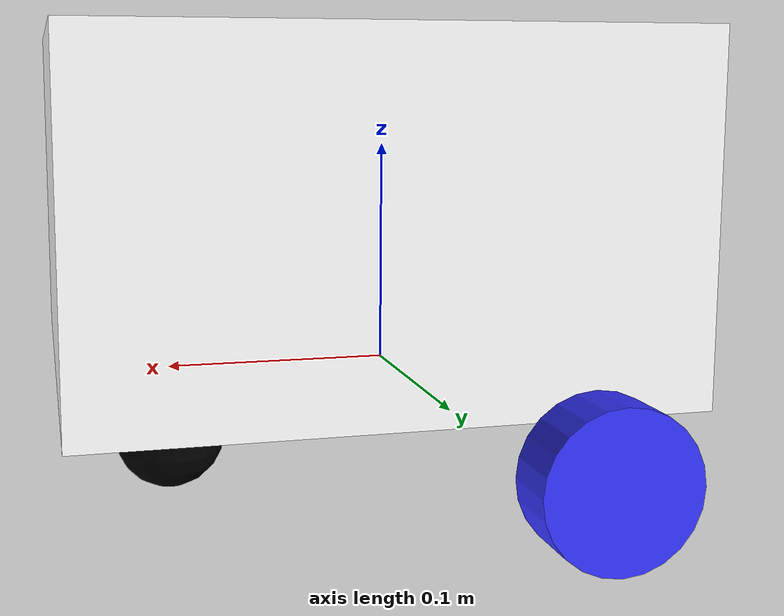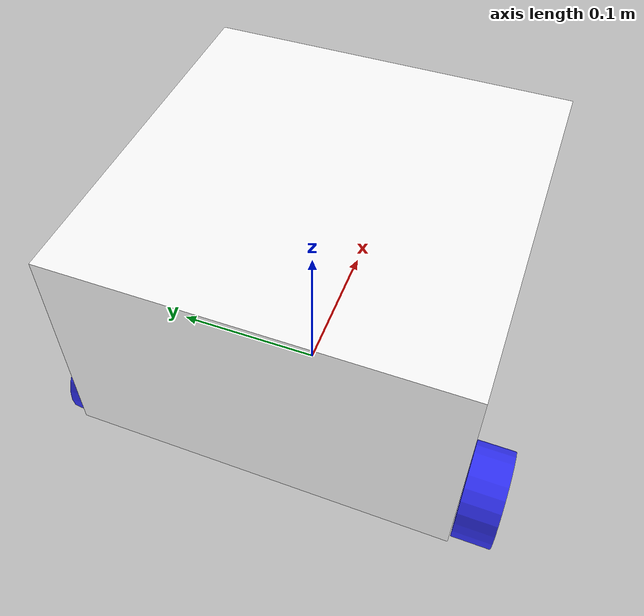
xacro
<?xml version="1.0"?>
<robot xmlns:xacro="http://www.ros.org/wiki/xacro" >

    <xacro:include filename="inertial_macros.xacro"/>

    <material name="white">
        <color rgba="1 1 1 1"/>
    </material>

    <material name="orange">
        <color rgba="1 0.3 0.1 1"/>
    </material>

    <material name="blue">
        <color rgba="0.2 0.2 1 1"/>
    </material>

    <material name="black">
        <color rgba="0 0 0 1"/>
    </material>

    <material name="red">
        <color rgba="1 0 0 1"/>
    </material>

    <!-- BASE LINK -->
    <link name="base_link">

    </link>

    <!-- BASE_FOOTPRINT LINK -->

    <joint name="base_footprint_joint" type="fixed">
        <parent link="base_link"/>
        <child link="base_footprint"/>
        <origin xyz="0 0 0" rpy="0 0 0"/>
    </joint>

    <link name="base_footprint">
    </link>

    <!-- CHASSIS LINK -->

    <joint name="chassis_joint" type="fixed">
        <parent link="base_link"/>
        <child link="chassis"/>
        <origin xyz="-0.1 0 0"/>

    </joint>

    <link name="chassis">
        <visual>
            <origin xyz="0.125 0 0.075"/>
            <geometry>
                <box size="0.25 0.25 0.15"/>
            </geometry>
            <material name="white"/>
        </visual>
        <collision>
            <origin xyz="0.125 0 0.075"/>
            <geometry>
                <box size="0.25 0.25 0.15"/>
            </geometry>
        </collision>
        <xacro:inertial_box mass="0.5" x="0.25" y="0.25" z="0.15">
            <origin xyz="0.125 0 0.075" rpy="0 0 0"/>
        </xacro:inertial_box>
    </link>

    <gazebo reference="chassis">
        <material>Gazebo/White</material>
    </gazebo>

    <!-- LEFT WHEEL LINK -->

    <joint name="left_wheel_joint" type="continuous">
        <parent link="base_link"/>
        <child link="left_wheel"/>
        <origin xyz="-0.05 0.139 -0.02075" rpy="-1.57 0 0"/>
        <axis xyz="0 0 1"/>
    </joint>

    <link name="left_wheel">
        <visual>
            <geometry>
                <cylinder length="0.026" radius="0.0325"/>
            </geometry>
            <material name="blue"/>
        </visual>
        <collision>
            <geometry>
                <cylinder length="0.026" radius="0.0325"/>
            </geometry>
        </collision>
        <xacro:inertial_cylinder mass="0.1" length="0.026" radius="0.0325">
            <origin xyz="0 0 0" rpy="0 0 0"/>
        </xacro:inertial_cylinder>
    </link>

    <gazebo reference="left_wheel">
        <material>Gazebo/Blue</material>
    </gazebo>

    <!-- RIGHT WHEEL LINK -->

    <joint name="right_wheel_joint" type="continuous">
        <parent link="base_link"/>
        <child link="right_wheel"/>
        <origin xyz="-0.05 -0.139 -0.02075" rpy="1.57 0 0"/>
        <axis xyz="0 0 -1"/>
    </joint>

    <link name="right_wheel">
        <visual>
            <geometry>
                <cylinder length="0.026" radius="0.0325"/>
            </geometry>
            <material name="blue"/>
        </visual>
        <collision>
            <geometry>
                <cylinder length="0.026" radius="0.0325"/>
            </geometry>
        </collision>
        <xacro:inertial_cylinder mass="0.1" length="0.026" radius="0.0325">
            <origin xyz="0 0 0" rpy="0 0 0"/>
        </xacro:inertial_cylinder>
    </link>

    <gazebo reference="right_wheel">
        <material>Gazebo/Blue</material>
    </gazebo>

    <!-- CASTER WHEEL LINK -->
    <joint name="caster_wheel_joint" type="fixed">
        <parent link="chassis"/>
        <child link="caster_wheel"/>
        <origin xyz="0.20 0 -0.03"/>
    </joint>

    <link name="caster_wheel">
        <visual>
            <geometry>
                <sphere radius="0.025"/>
            </geometry>
            <material name="black"/>
        </visual>
        <collision>
            <geometry>
                <sphere radius="0.025"/>
            </geometry>
        </collision>
        <xacro:inertial_sphere mass="0.1" radius="0.025">
            <origin xyz="0 0 0" rpy="0 0 0"/>
        </xacro:inertial_sphere>
    </link>

    <gazebo reference="caster_wheel">
        <material>Gazebo/Black</material>
        <mu1 value="0.001"/>
        <mu2 value="0.001"/>
    </gazebo>

</robot>
